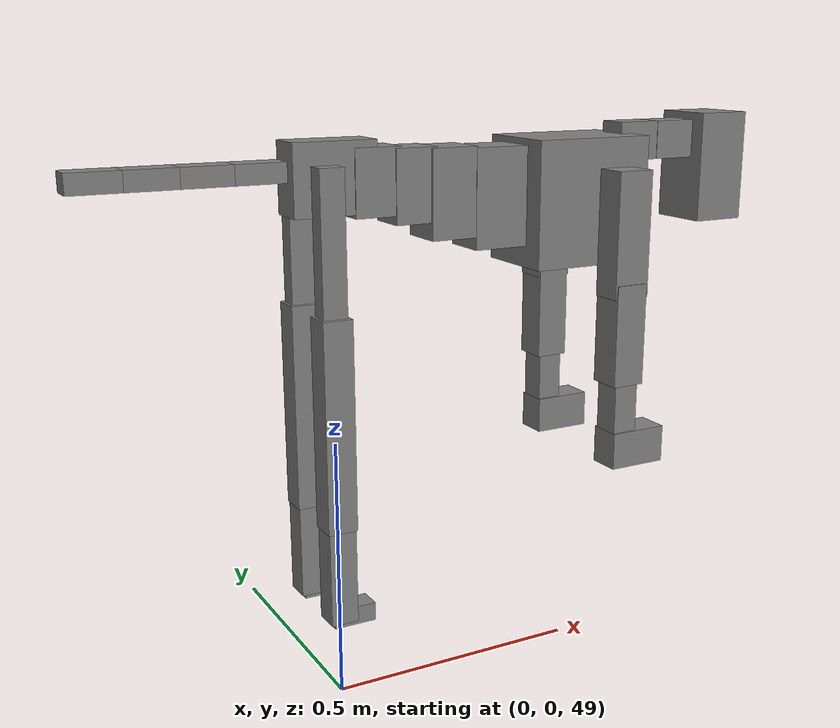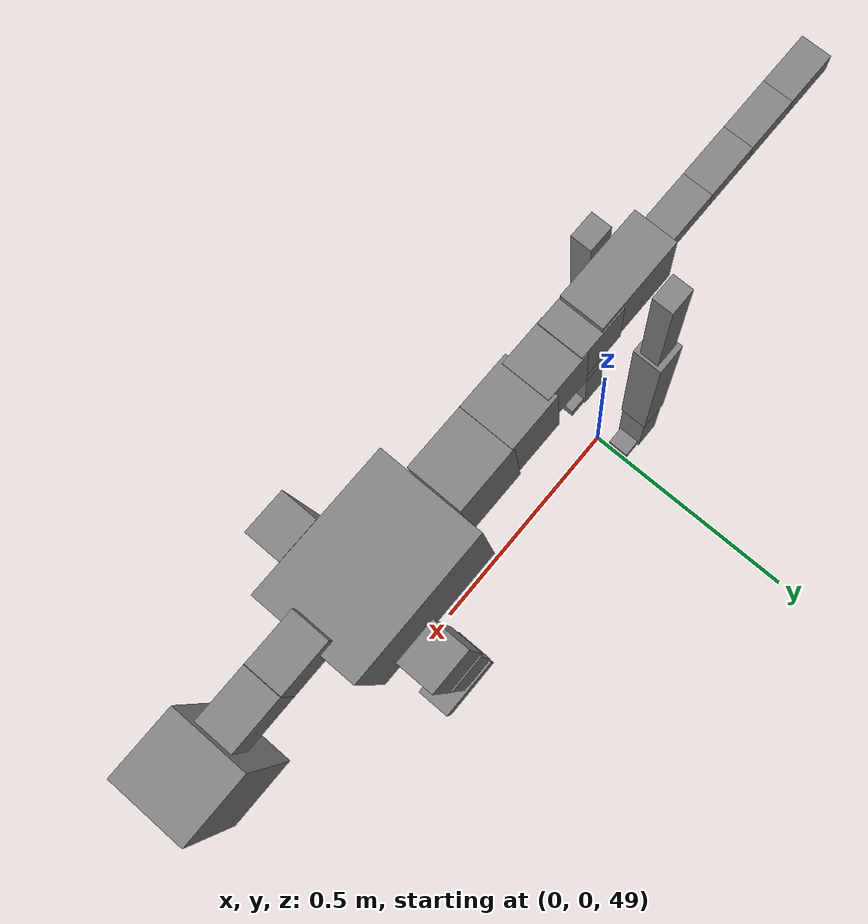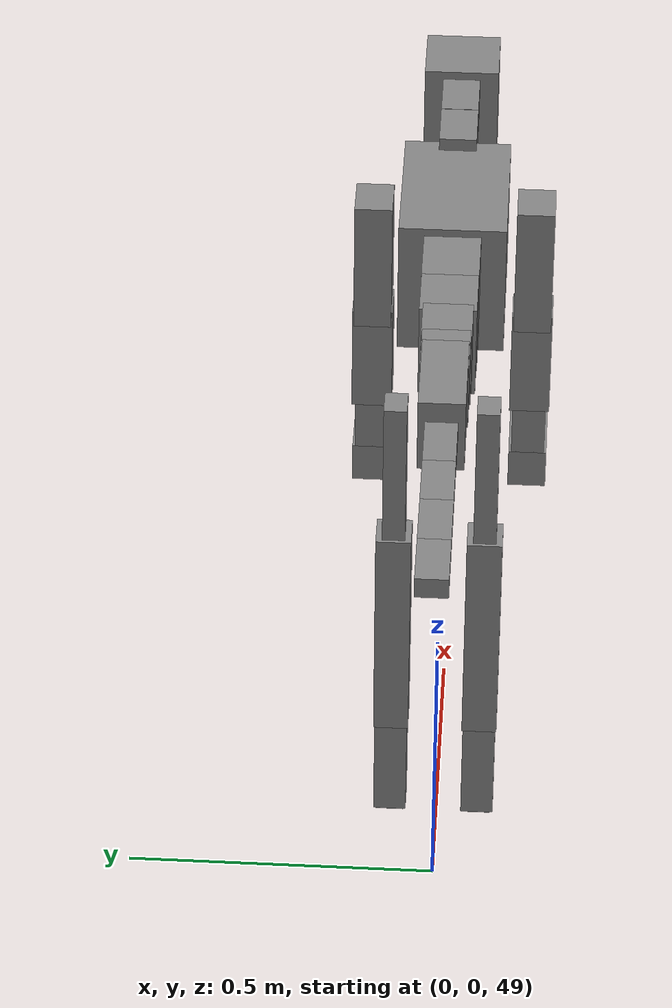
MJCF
<mujoco model="dog">

    <default>
        <joint armature="0.02" stiffness="1" damping="0.2" limited="true"/>
        <geom condim="3" friction="1 0.05 0.05" margin="0.01"/>
        <motor ctrllimited="true" ctrlrange="-1.0 1.0" forcelimited="true" gear="50"/>
    </default>

    <compiler inertiafromgeom="true" angle="radian"/>

    <option timestep="0.016" iterations="50" tolerance="1e-10" solver="Newton" jacobian="dense" cone="pyramidal"/>

    <size nconmax="20000" njmax="60000" nstack="5000000"/>
    <visual>
        <map force="0.1" zfar="30"/>
        <rgba haze="0.15 0.25 0.35 1"/>
        <quality shadowsize="2048"/>
        <global offwidth="800" offheight="800"/>
    </visual>

    <asset>
        <texture type="skybox" builtin="gradient" rgb1="0.3 0.5 0.7" rgb2="0 0 0" width="512" height="512"/>
        <texture name="texplane" type="2d" builtin="checker" rgb1=".2 .3 .4" rgb2=".1 0.15 0.2" width="512" height="512"
                 mark="cross" markrgb=".8 .8 .8"/>
        <texture name="texgeom" type="cube" builtin="flat" mark="cross" width="127" height="1278" rgb1="0.8 0.6 0.4"
                 rgb2="0.8 0.6 0.4" markrgb="1 1 1" random="0.01"/>

        <material name="matplane" reflectance="0.3" texture="texplane" texrepeat="1 1" texuniform="true"/>
        <material name="matgeom" texture="texgeom" texuniform="true" rgba="0.8 0.6 .4 1"/>
    </asset>

    <worldbody>
        <geom name="floor" pos="0 0 0" size="0 0 .25" type="plane" material="matplane" condim="3"/>

        <light directional="false" diffuse=".2 .2 .2" specular="0 0 0" pos="0 0 5" dir="0 0 -1" castshadow="false"/>
        <light mode="targetbodycom" target="torso" directional="false" diffuse=".8 .8 .8" specular="0.3 0.3 0.3"
               pos="0 0 4.0" dir="0 0 -1"/>

        <body name="root" pos="0 0 50">
            <freejoint name="root_1"/>
            <geom type="box" pos="0 0 -0.02" size="0.0774  0.0358  0.063" density="2030"/>

            <body name="spine1" pos="0.054 0 0">
                <joint name="spine1_y" axis="0 1 0" range="0 0.7" limited="true"/>
                <geom type="box" pos="0.02375 0 -0.03" size="0.04375  0.0375  0.05985" density="2030"/>

                <body name="spine2" pos="0.0612 0 0">
                    <joint name="spine2_y" axis="0 1 0" range="-0.15 0.15" limited="true"/>
                    <geom type="box" pos="0.03555  0  -0.04" size="0.04055  0.039  0.06615" density="2030"/>

                    <body name="spine3" pos="0.0730 0 0">
                        <joint name="spine3_y" axis="0 1 0" range="-0.15 0.15" limited="true"/>
                        <geom type="box" pos="0.03555  0  -0.057" size="0.04555  0.0445  0.081" density="2030"/>

                        <body name="spine4" pos="0.0780 0 0">
                            <joint name="spine4_y" axis="0 1 0" range="-0.15 0.15" limited="true"/>
                            <geom type="box" pos="0.05265  0  -0.07" size="0.05265  0.045  0.09135" density="2030"/>

                            <body name="torso" pos="0.1082 0 0">
                                <joint name="torso_y" axis="0 1 0" range="-0.15 0.15" limited="true"/>
                                <geom type="box" pos="0.11925  0  -0.085" size="0.11925  0.085  0.11745"
                                      density="2030"/>

                                <body name="neck1" pos="0.2160  0   0.0180">
                                    <joint name="neck1_y" axis="0 1 0" range="-1.2  -1" limited="true"/>
                                    <geom type="box" pos="0.0423  0  0" size="0.0423  0.03  0.036" density="2325"/>

                                    <body name="neck2" pos="0.0853  0  0">
                                        <joint name="neck2_y" axis="0 1 0" range="0.1  0" limited="true"/>
                                        <geom type="box" pos="0.0423  0  0" size="0.0423  0.03  0.036" density="2325"/>

                                        <body name="head" pos="0.0853  0  0">
                                            <joint name="head_y" axis="0 1 0" range="-0.3  -0.2" limited="true"/>
                                            <geom type="box" pos="0.0531  0  -0.055" size="0.0531  0.06  0.1044"
                                                  density="4030"/>

                                        </body>
                                    </body>
                                </body>

                                <body name="front_shoulder" pos="0.156  0   -0.0480">
                                    <joint name="front_shoulder_y" axis="0 1 0" range="-1 1.5" limited="true"/>
                                    <geom type="box" pos="0 0.13 -0.0906" size="0.0356  0.0304  0.1172" density="1158"/>
                                    <geom type="box" pos="0 -0.13 -0.0906" size="0.0356  0.0304  0.1172"
                                          density="1158"/>

                                    <body name="front_elbow" pos="0  0  -0.1811">
                                        <joint name="front_elbow_y" axis="0 1 0" range="-2 0" limited="true"/>
                                        <geom type="box" pos="0 0.13 -0.0963" size="0.0320  0.0327  0.0963"
                                              density="1081"/>
                                        <geom type="box" pos="0 -0.13 -0.0963" size="0.0320  0.0327  0.0963"
                                              density="1081"/>

                                        <body name="front_wrist" pos="0  0  -0.1925">
                                            <joint name="front_wrist_y" axis="0 1 0" range="-0.2 0" limited="true"/>
                                            <geom type="box" pos="0 0.13 -0.0540" size="0.0245  0.0272  0.0671"
                                                  density="1664"/>
                                            <geom type="box" pos="0 -0.13 -0.0540" size="0.0245  0.0272  0.0671"
                                                  density="1664"/>

                                            <body name="front_finger_end" pos="0  0  -0.1079">
                                                <joint name="front_finger_y" axis="0 1 0" range="-0.4 1"
                                                       limited="true"/>
                                                <geom type="box" pos="0.0312  0.13  -0.0203"
                                                      size="0.0571  0.0312  0.0353" density="1515"/>
                                                <geom type="box" pos="0.0312  -0.13  -0.0203"
                                                      size="0.0571  0.0312  0.0353" density="1515"/>

                                            </body>

                                        </body>
                                    </body>
                                </body>

                            </body>
                        </body>
                    </body>
                </body>
            </body>

            <body name="back_hip" pos="-0.03 0 -0.018">
                <joint name="back_hip_y" axis="0 1 0" range="-1.5 0.3" limited="true"/>
                <geom type="box" pos="0 0.07 -0.1225" size="0.0225  0.0176  0.1453" density="1154"/>
                <geom type="box" pos="0 -0.07 -0.1225" size="0.0225  0.0176  0.1453" density="1154"/>

                <body name="back_knee" pos="0  0  -0.2451">
                    <joint name="back_knee_y" axis="0 1 0" range="0 2.8" limited="true"/>
                    <geom type="box" pos="0 0.07 -0.1766" size="0.0277  0.0273  0.1922" density="1227"/>
                    <geom type="box" pos="0 -0.07 -0.1766" size="0.0277  0.0273  0.1922" density="1227"/>

                    <body name="back_ankle" pos="0  0  -0.3533">
                        <joint name="back_ankle_y" axis="0 1 0" range="-2.2 0" limited="true"/>
                        <geom type="box" pos="0 0.07 -0.0904" size="0.0256  0.0256  0.1017" density="1284"/>
                        <geom type="box" pos="0 -0.07 -0.0904" size="0.0256  0.0256  0.1017" density="1284"/>

                        <body name="back_toe_end" pos="0  0  -0.1809">
                            <joint name="back_toe_y" axis="0 1 0" range="-0.4 1" limited="true"/>
                            <geom type="box" pos="0.0218  0.07  -0.0021" size="0.0399  0.0218  0.0171" density="1515"/>
                            <geom type="box" pos="0.0218  -0.07  -0.0021" size="0.0399  0.0218  0.0171" density="1515"/>

                        </body>
                    </body>
                </body>
            </body>

            <body name="tail1" pos="-0.074 0 -0.006">
                <joint name="tail1_y" axis="0 1 0" range="-0.2 0.2" limited="true"/>
                <geom type="box" pos="-0.0536  0  0" size="0.045  0.025  0.0175" density="1587"/>

                <body name="tail2" pos="-0.09 0 0">
                    <joint name="tail2_y" axis="0 1 0" range="-0.2 0.2" limited="true"/>
                    <geom type="box" pos="-0.0536  0  0" size="0.045  0.025  0.0175" density="1587"/>

                    <body name="tail3" pos="-0.09 0 0">
                        <joint name="tail3_y" axis="0 1 0" range="-0.2 0.2" limited="true"/>
                        <geom type="box" pos="-0.0536  0  0" size="0.045  0.025  0.0175" density="1587"/>

                        <body name="tail4" pos="-0.09 0 0">
                            <joint name="tail4_y" axis="0 1 0" range="-0.2 0.2" limited="true"/>
                            <geom type="box" pos="-0.0536  0  0" size="0.045  0.025  0.0175" density="1587"/>

                        </body>
                    </body>
                </body>
            </body>
        </body>
    </worldbody>

    <actuator>
        <motor joint="spine1_y" forcerange="-150 150     "/>
        <motor joint="spine2_y" forcerange="-150 150     "/>
        <motor joint="spine3_y" forcerange="-150 150     "/>
        <motor joint="spine4_y" forcerange="-150 150     "/>
        <motor joint="torso_y" forcerange="-150 150     "/>
        <motor joint="neck1_y" forcerange="-100 100       "/>
        <motor joint="neck2_y" forcerange="-100 100       "/>
        <motor joint="head_y" forcerange="-150 150       "/>
        <motor joint="front_shoulder_y" forcerange="-156.27 146.41"/>
        <motor joint="front_elbow_y" forcerange="-138.58 199.46"/>
        <motor joint="front_wrist_y" forcerange="-99.65 118.06"/>
        <motor joint="front_finger_y" forcerange="-65.10 61.13"/>
        <motor joint="back_hip_y" forcerange="-221.78 213.34"/>
        <motor joint="back_knee_y" forcerange="-247.59 349.54"/>
        <motor joint="back_angle_y" forcerange="-230.75 78.77"/>
        <motor joint="back_toe_y" forcerange="-31.31 62.97"/>
        <motor joint="tail1_y" forcerange="-50 50     "/>
        <motor joint="tail2_y" forcerange="-50 50     "/>
        <motor joint="tail3_y" forcerange="-50 50     "/>
        <motor joint="tail4_y" forcerange="-50 50     "/>
    </actuator>
</mujoco>
